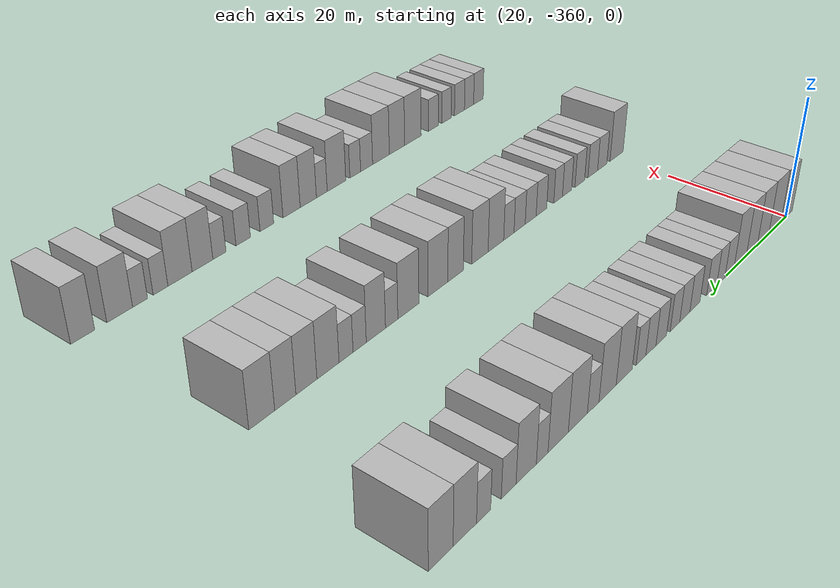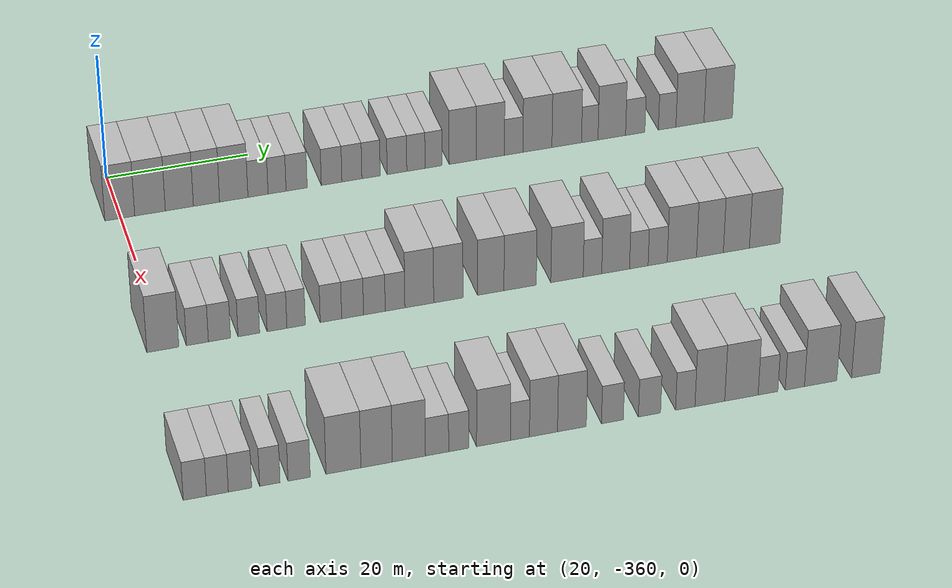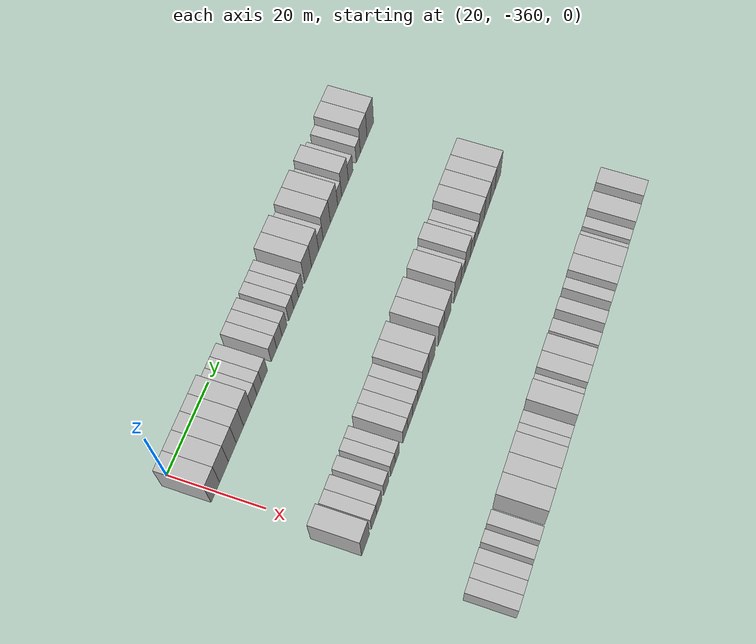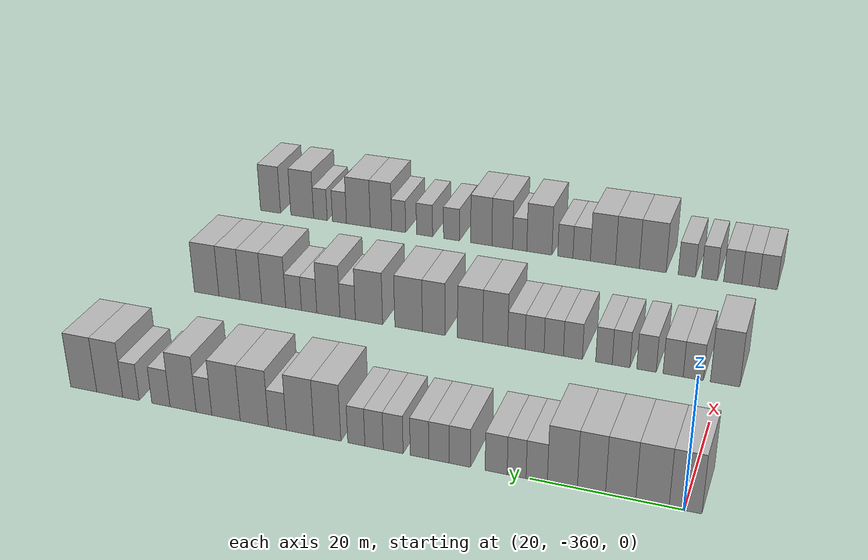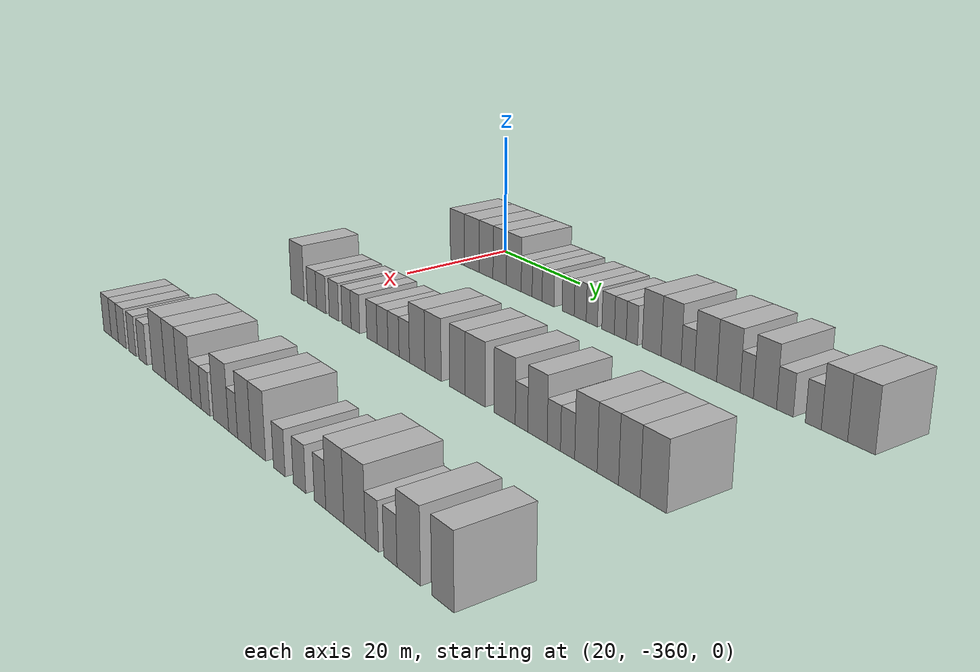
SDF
<sdf version="1.6">
 <world name="default">
  <model name="building_25">
   <static>1</static>
   <pose>25.0000 -360.1226 0 0.000000 0.000000 0.000000</pose>
   <link name="link">
    <pose>0 0 4.50 0 0 0</pose>
    <collision name="collision"><geometry><box><size>10.0000 4.1233 9.0000</size></box></geometry></collision>
    <visual name="visual">
     <cast_shadows>0</cast_shadows>
     <geometry><box><size>10.0000 4.1233 9.0000</size></box></geometry>
     <material>
      <script>
       <uri>model://HANNAS_wall/materials/scripts</uri>
       <uri>model://HANNAS_wall/materials/textures</uri>
       <name>vrc/HANNAS_wall</name>
      </script>
     </material>
    </visual>
   </link>
  </model>
  <model name="building_26">
   <static>1</static>
   <pose>25.0000 -355.9413 0 0.000000 0.000000 0.000000</pose>
   <link name="link">
    <pose>0 0 4.50 0 0 0</pose>
    <collision name="collision"><geometry><box><size>10.0000 4.2394 9.0000</size></box></geometry></collision>
    <visual name="visual">
     <cast_shadows>0</cast_shadows>
     <geometry><box><size>10.0000 4.2394 9.0000</size></box></geometry>
     <material>
      <script>
       <uri>model://HANNAS_wall/materials/scripts</uri>
       <uri>model://HANNAS_wall/materials/textures</uri>
       <name>vrc/HANNAS_wall</name>
      </script>
     </material>
    </visual>
   </link>
  </model>
  <model name="building_27">
   <static>1</static>
   <pose>25.0000 -351.8706 0 0.000000 0.000000 0.000000</pose>
   <link name="link">
    <pose>0 0 4.50 0 0 0</pose>
    <collision name="collision"><geometry><box><size>10.0000 3.9019 9.0000</size></box></geometry></collision>
    <visual name="visual">
     <cast_shadows>0</cast_shadows>
     <geometry><box><size>10.0000 3.9019 9.0000</size></box></geometry>
     <material>
      <script>
       <uri>model://HANNAS_wall/materials/scripts</uri>
       <uri>model://HANNAS_wall/materials/textures</uri>
       <name>vrc/HANNAS_wall</name>
      </script>
     </material>
    </visual>
   </link>
  </model>
  <model name="building_28">
   <static>1</static>
   <pose>25.0000 -348.0897 0 0.000000 0.000000 0.000000</pose>
   <link name="link">
    <pose>0 0 4.50 0 0 0</pose>
    <collision name="collision"><geometry><box><size>10.0000 3.6598 9.0000</size></box></geometry></collision>
    <visual name="visual">
     <cast_shadows>0</cast_shadows>
     <geometry><box><size>10.0000 3.6598 9.0000</size></box></geometry>
     <material>
      <script>
       <uri>model://HANNAS_wall/materials/scripts</uri>
       <uri>model://HANNAS_wall/materials/textures</uri>
       <name>vrc/HANNAS_wall</name>
      </script>
     </material>
    </visual>
   </link>
  </model>
  <model name="building_29">
   <static>1</static>
   <pose>25.0000 -344.2783 0 0.000000 0.000000 0.000000</pose>
   <link name="link">
    <pose>0 0 4.50 0 0 0</pose>
    <collision name="collision"><geometry><box><size>10.0000 3.9630 9.0000</size></box></geometry></collision>
    <visual name="visual">
     <cast_shadows>0</cast_shadows>
     <geometry><box><size>10.0000 3.9630 9.0000</size></box></geometry>
     <material>
      <script>
       <uri>model://HANNAS_wall/materials/scripts</uri>
       <uri>model://HANNAS_wall/materials/textures</uri>
       <name>vrc/HANNAS_wall</name>
      </script>
     </material>
    </visual>
   </link>
  </model>
  <model name="building_30">
   <static>1</static>
   <pose>25.0000 -340.8837 0 0.000000 0.000000 0.000000</pose>
   <link name="link">
    <pose>0 0 3.00 0 0 0</pose>
    <collision name="collision"><geometry><box><size>10.0000 2.8261 6.0000</size></box></geometry></collision>
    <visual name="visual">
     <cast_shadows>0</cast_shadows>
     <geometry><box><size>10.0000 2.8261 6.0000</size></box></geometry>
     <material>
      <script>
       <uri>model://HANNAS_wall/materials/scripts</uri>
       <uri>model://HANNAS_wall/materials/textures</uri>
       <name>vrc/HANNAS_wall</name>
      </script>
     </material>
    </visual>
   </link>
  </model>
  <model name="building_31">
   <static>1</static>
   <pose>25.0000 -338.2018 0 0.000000 0.000000 0.000000</pose>
   <link name="link">
    <pose>0 0 3.00 0 0 0</pose>
    <collision name="collision"><geometry><box><size>10.0000 2.5377 6.0000</size></box></geometry></collision>
    <visual name="visual">
     <cast_shadows>0</cast_shadows>
     <geometry><box><size>10.0000 2.5377 6.0000</size></box></geometry>
     <material>
      <script>
       <uri>model://HANNAS_wall/materials/scripts</uri>
       <uri>model://HANNAS_wall/materials/textures</uri>
       <name>vrc/HANNAS_wall</name>
      </script>
     </material>
    </visual>
   </link>
  </model>
  <model name="building_32">
   <static>1</static>
   <pose>25.0000 -335.4425 0 0.000000 0.000000 0.000000</pose>
   <link name="link">
    <pose>0 0 3.00 0 0 0</pose>
    <collision name="collision"><geometry><box><size>10.0000 2.9809 6.0000</size></box></geometry></collision>
    <visual name="visual">
     <cast_shadows>0</cast_shadows>
     <geometry><box><size>10.0000 2.9809 6.0000</size></box></geometry>
     <material>
      <script>
       <uri>model://HANNAS_wall/materials/scripts</uri>
       <uri>model://HANNAS_wall/materials/textures</uri>
       <name>vrc/HANNAS_wall</name>
      </script>
     </material>
    </visual>
   </link>
  </model>
  <model name="building_33">
   <static>1</static>
   <pose>25.0000 -330.4921 0 0.000000 0.000000 0.000000</pose>
   <link name="link">
    <pose>0 0 3.00 0 0 0</pose>
    <collision name="collision"><geometry><box><size>10.0000 2.9199 6.0000</size></box></geometry></collision>
    <visual name="visual">
     <cast_shadows>0</cast_shadows>
     <geometry><box><size>10.0000 2.9199 6.0000</size></box></geometry>
     <material>
      <script>
       <uri>model://HANNAS_wall/materials/scripts</uri>
       <uri>model://HANNAS_wall/materials/textures</uri>
       <name>vrc/HANNAS_wall</name>
      </script>
     </material>
    </visual>
   </link>
  </model>
  <model name="building_34">
   <static>1</static>
   <pose>25.0000 -327.6119 0 0.000000 0.000000 0.000000</pose>
   <link name="link">
    <pose>0 0 3.00 0 0 0</pose>
    <collision name="collision"><geometry><box><size>10.0000 2.8404 6.0000</size></box></geometry></collision>
    <visual name="visual">
     <cast_shadows>0</cast_shadows>
     <geometry><box><size>10.0000 2.8404 6.0000</size></box></geometry>
     <material>
      <script>
       <uri>model://HANNAS_wall/materials/scripts</uri>
       <uri>model://HANNAS_wall/materials/textures</uri>
       <name>vrc/HANNAS_wall</name>
      </script>
     </material>
    </visual>
   </link>
  </model>
  <model name="building_35">
   <static>1</static>
   <pose>25.0000 -324.8890 0 0.000000 0.000000 0.000000</pose>
   <link name="link">
    <pose>0 0 3.00 0 0 0</pose>
    <collision name="collision"><geometry><box><size>10.0000 2.6055 6.0000</size></box></geometry></collision>
    <visual name="visual">
     <cast_shadows>0</cast_shadows>
     <geometry><box><size>10.0000 2.6055 6.0000</size></box></geometry>
     <material>
      <script>
       <uri>model://HANNAS_wall/materials/scripts</uri>
       <uri>model://HANNAS_wall/materials/textures</uri>
       <name>vrc/HANNAS_wall</name>
      </script>
     </material>
    </visual>
   </link>
  </model>
  <model name="building_36">
   <static>1</static>
   <pose>25.0000 -321.1808 0 0.000000 0.000000 0.000000</pose>
   <link name="link">
    <pose>0 0 3.00 0 0 0</pose>
    <collision name="collision"><geometry><box><size>10.0000 2.8110 6.0000</size></box></geometry></collision>
    <visual name="visual">
     <cast_shadows>0</cast_shadows>
     <geometry><box><size>10.0000 2.8110 6.0000</size></box></geometry>
     <material>
      <script>
       <uri>model://HANNAS_wall/materials/scripts</uri>
       <uri>model://HANNAS_wall/materials/textures</uri>
       <name>vrc/HANNAS_wall</name>
      </script>
     </material>
    </visual>
   </link>
  </model>
  <model name="building_37">
   <static>1</static>
   <pose>25.0000 -318.4641 0 0.000000 0.000000 0.000000</pose>
   <link name="link">
    <pose>0 0 3.00 0 0 0</pose>
    <collision name="collision"><geometry><box><size>10.0000 2.6223 6.0000</size></box></geometry></collision>
    <visual name="visual">
     <cast_shadows>0</cast_shadows>
     <geometry><box><size>10.0000 2.6223 6.0000</size></box></geometry>
     <material>
      <script>
       <uri>model://HANNAS_wall/materials/scripts</uri>
       <uri>model://HANNAS_wall/materials/textures</uri>
       <name>vrc/HANNAS_wall</name>
      </script>
     </material>
    </visual>
   </link>
  </model>
  <model name="building_38">
   <static>1</static>
   <pose>25.0000 -315.9210 0 0.000000 0.000000 0.000000</pose>
   <link name="link">
    <pose>0 0 3.00 0 0 0</pose>
    <collision name="collision"><geometry><box><size>10.0000 2.4640 6.0000</size></box></geometry></collision>
    <visual name="visual">
     <cast_shadows>0</cast_shadows>
     <geometry><box><size>10.0000 2.4640 6.0000</size></box></geometry>
     <material>
      <script>
       <uri>model://HANNAS_wall/materials/scripts</uri>
       <uri>model://HANNAS_wall/materials/textures</uri>
       <name>vrc/HANNAS_wall</name>
      </script>
     </material>
    </visual>
   </link>
  </model>
  <model name="building_39">
   <static>1</static>
   <pose>25.0000 -311.7284 0 0.000000 0.000000 0.000000</pose>
   <link name="link">
    <pose>0 0 4.50 0 0 0</pose>
    <collision name="collision"><geometry><box><size>10.0000 3.9211 9.0000</size></box></geometry></collision>
    <visual name="visual">
     <cast_shadows>0</cast_shadows>
     <geometry><box><size>10.0000 3.9211 9.0000</size></box></geometry>
     <material>
      <script>
       <uri>model://HANNAS_wall/materials/scripts</uri>
       <uri>model://HANNAS_wall/materials/textures</uri>
       <name>vrc/HANNAS_wall</name>
      </script>
     </material>
    </visual>
   </link>
  </model>
  <model name="building_40">
   <static>1</static>
   <pose>25.0000 -307.7349 0 0.000000 0.000000 0.000000</pose>
   <link name="link">
    <pose>0 0 4.50 0 0 0</pose>
    <collision name="collision"><geometry><box><size>10.0000 4.0659 9.0000</size></box></geometry></collision>
    <visual name="visual">
     <cast_shadows>0</cast_shadows>
     <geometry><box><size>10.0000 4.0659 9.0000</size></box></geometry>
     <material>
      <script>
       <uri>model://HANNAS_wall/materials/scripts</uri>
       <uri>model://HANNAS_wall/materials/textures</uri>
       <name>vrc/HANNAS_wall</name>
      </script>
     </material>
    </visual>
   </link>
  </model>
  <model name="building_41">
   <static>1</static>
   <pose>25.0000 -304.3596 0 0.000000 0.000000 0.000000</pose>
   <link name="link">
    <pose>0 0 3.00 0 0 0</pose>
    <collision name="collision"><geometry><box><size>10.0000 2.6848 6.0000</size></box></geometry></collision>
    <visual name="visual">
     <cast_shadows>0</cast_shadows>
     <geometry><box><size>10.0000 2.6848 6.0000</size></box></geometry>
     <material>
      <script>
       <uri>model://HANNAS_wall/materials/scripts</uri>
       <uri>model://HANNAS_wall/materials/textures</uri>
       <name>vrc/HANNAS_wall</name>
      </script>
     </material>
    </visual>
   </link>
  </model>
  <model name="building_42">
   <static>1</static>
   <pose>25.0000 -300.9014 0 0.000000 0.000000 0.000000</pose>
   <link name="link">
    <pose>0 0 4.50 0 0 0</pose>
    <collision name="collision"><geometry><box><size>10.0000 4.2315 9.0000</size></box></geometry></collision>
    <visual name="visual">
     <cast_shadows>0</cast_shadows>
     <geometry><box><size>10.0000 4.2315 9.0000</size></box></geometry>
     <material>
      <script>
       <uri>model://HANNAS_wall/materials/scripts</uri>
       <uri>model://HANNAS_wall/materials/textures</uri>
       <name>vrc/HANNAS_wall</name>
      </script>
     </material>
    </visual>
   </link>
  </model>
  <model name="building_43">
   <static>1</static>
   <pose>25.0000 -296.6218 0 0.000000 0.000000 0.000000</pose>
   <link name="link">
    <pose>0 0 4.50 0 0 0</pose>
    <collision name="collision"><geometry><box><size>10.0000 4.3277 9.0000</size></box></geometry></collision>
    <visual name="visual">
     <cast_shadows>0</cast_shadows>
     <geometry><box><size>10.0000 4.3277 9.0000</size></box></geometry>
     <material>
      <script>
       <uri>model://HANNAS_wall/materials/scripts</uri>
       <uri>model://HANNAS_wall/materials/textures</uri>
       <name>vrc/HANNAS_wall</name>
      </script>
     </material>
    </visual>
   </link>
  </model>
  <model name="building_44">
   <static>1</static>
   <pose>25.0000 -293.2491 0 0.000000 0.000000 0.000000</pose>
   <link name="link">
    <pose>0 0 3.00 0 0 0</pose>
    <collision name="collision"><geometry><box><size>10.0000 2.4176 6.0000</size></box></geometry></collision>
    <visual name="visual">
     <cast_shadows>0</cast_shadows>
     <geometry><box><size>10.0000 2.4176 6.0000</size></box></geometry>
     <material>
      <script>
       <uri>model://HANNAS_wall/materials/scripts</uri>
       <uri>model://HANNAS_wall/materials/textures</uri>
       <name>vrc/HANNAS_wall</name>
      </script>
     </material>
    </visual>
   </link>
  </model>
  <model name="building_45">
   <static>1</static>
   <pose>25.0000 -290.0112 0 0.000000 0.000000 0.000000</pose>
   <link name="link">
    <pose>0 0 4.50 0 0 0</pose>
    <collision name="collision"><geometry><box><size>10.0000 4.0582 9.0000</size></box></geometry></collision>
    <visual name="visual">
     <cast_shadows>0</cast_shadows>
     <geometry><box><size>10.0000 4.0582 9.0000</size></box></geometry>
     <material>
      <script>
       <uri>model://HANNAS_wall/materials/scripts</uri>
       <uri>model://HANNAS_wall/materials/textures</uri>
       <name>vrc/HANNAS_wall</name>
      </script>
     </material>
    </visual>
   </link>
  </model>
  <model name="building_46">
   <static>1</static>
   <pose>25.0000 -286.5577 0 0.000000 0.000000 0.000000</pose>
   <link name="link">
    <pose>0 0 3.00 0 0 0</pose>
    <collision name="collision"><geometry><box><size>10.0000 2.8488 6.0000</size></box></geometry></collision>
    <visual name="visual">
     <cast_shadows>0</cast_shadows>
     <geometry><box><size>10.0000 2.8488 6.0000</size></box></geometry>
     <material>
      <script>
       <uri>model://HANNAS_wall/materials/scripts</uri>
       <uri>model://HANNAS_wall/materials/textures</uri>
       <name>vrc/HANNAS_wall</name>
      </script>
     </material>
    </visual>
   </link>
  </model>
  <model name="building_47">
   <static>1</static>
   <pose>25.0000 -281.8318 0 0.000000 0.000000 0.000000</pose>
   <link name="link">
    <pose>0 0 3.00 0 0 0</pose>
    <collision name="collision"><geometry><box><size>10.0000 2.6030 6.0000</size></box></geometry></collision>
    <visual name="visual">
     <cast_shadows>0</cast_shadows>
     <geometry><box><size>10.0000 2.6030 6.0000</size></box></geometry>
     <material>
      <script>
       <uri>model://HANNAS_wall/materials/scripts</uri>
       <uri>model://HANNAS_wall/materials/textures</uri>
       <name>vrc/HANNAS_wall</name>
      </script>
     </material>
    </visual>
   </link>
  </model>
  <model name="building_48">
   <static>1</static>
   <pose>25.0000 -278.4453 0 0.000000 0.000000 0.000000</pose>
   <link name="link">
    <pose>0 0 4.50 0 0 0</pose>
    <collision name="collision"><geometry><box><size>10.0000 4.1701 9.0000</size></box></geometry></collision>
    <visual name="visual">
     <cast_shadows>0</cast_shadows>
     <geometry><box><size>10.0000 4.1701 9.0000</size></box></geometry>
     <material>
      <script>
       <uri>model://HANNAS_wall/materials/scripts</uri>
       <uri>model://HANNAS_wall/materials/textures</uri>
       <name>vrc/HANNAS_wall</name>
      </script>
     </material>
    </visual>
   </link>
  </model>
  <model name="building_49">
   <static>1</static>
   <pose>25.0000 -274.2429 0 0.000000 0.000000 0.000000</pose>
   <link name="link">
    <pose>0 0 4.50 0 0 0</pose>
    <collision name="collision"><geometry><box><size>10.0000 4.2348 9.0000</size></box></geometry></collision>
    <visual name="visual">
     <cast_shadows>0</cast_shadows>
     <geometry><box><size>10.0000 4.2348 9.0000</size></box></geometry>
     <material>
      <script>
       <uri>model://HANNAS_wall/materials/scripts</uri>
       <uri>model://HANNAS_wall/materials/textures</uri>
       <name>vrc/HANNAS_wall</name>
      </script>
     </material>
    </visual>
   </link>
  </model>
  <model name="building_241">
   <static>1</static>
   <pose>55.0000 -360.5211 0 0.000000 0.000000 0.000000</pose>
   <link name="link">
    <pose>0 0 4.50 0 0 0</pose>
    <collision name="collision"><geometry><box><size>10.0000 4.2093 9.0000</size></box></geometry></collision>
    <visual name="visual">
     <cast_shadows>0</cast_shadows>
     <geometry><box><size>10.0000 4.2093 9.0000</size></box></geometry>
     <material>
      <script>
       <uri>model://HANNAS_wall/materials/scripts</uri>
       <uri>model://HANNAS_wall/materials/textures</uri>
       <name>vrc/HANNAS_wall</name>
      </script>
     </material>
    </visual>
   </link>
  </model>
  <model name="building_242">
   <static>1</static>
   <pose>55.0000 -355.9634 0 0.000000 0.000000 0.000000</pose>
   <link name="link">
    <pose>0 0 3.00 0 0 0</pose>
    <collision name="collision"><geometry><box><size>10.0000 2.9061 6.0000</size></box></geometry></collision>
    <visual name="visual">
     <cast_shadows>0</cast_shadows>
     <geometry><box><size>10.0000 2.9061 6.0000</size></box></geometry>
     <material>
      <script>
       <uri>model://HANNAS_wall/materials/scripts</uri>
       <uri>model://HANNAS_wall/materials/textures</uri>
       <name>vrc/HANNAS_wall</name>
      </script>
     </material>
    </visual>
   </link>
  </model>
  <model name="building_243">
   <static>1</static>
   <pose>55.0000 -353.0442 0 0.000000 0.000000 0.000000</pose>
   <link name="link">
    <pose>0 0 3.00 0 0 0</pose>
    <collision name="collision"><geometry><box><size>10.0000 2.9323 6.0000</size></box></geometry></collision>
    <visual name="visual">
     <cast_shadows>0</cast_shadows>
     <geometry><box><size>10.0000 2.9323 6.0000</size></box></geometry>
     <material>
      <script>
       <uri>model://HANNAS_wall/materials/scripts</uri>
       <uri>model://HANNAS_wall/materials/textures</uri>
       <name>vrc/HANNAS_wall</name>
      </script>
     </material>
    </visual>
   </link>
  </model>
  <model name="building_244">
   <static>1</static>
   <pose>55.0000 -349.1440 0 0.000000 0.000000 0.000000</pose>
   <link name="link">
    <pose>0 0 3.00 0 0 0</pose>
    <collision name="collision"><geometry><box><size>10.0000 2.8681 6.0000</size></box></geometry></collision>
    <visual name="visual">
     <cast_shadows>0</cast_shadows>
     <geometry><box><size>10.0000 2.8681 6.0000</size></box></geometry>
     <material>
      <script>
       <uri>model://HANNAS_wall/materials/scripts</uri>
       <uri>model://HANNAS_wall/materials/textures</uri>
       <name>vrc/HANNAS_wall</name>
      </script>
     </material>
    </visual>
   </link>
  </model>
  <model name="building_245">
   <static>1</static>
   <pose>55.0000 -345.3884 0 0.000000 0.000000 0.000000</pose>
   <link name="link">
    <pose>0 0 3.00 0 0 0</pose>
    <collision name="collision"><geometry><box><size>10.0000 2.6430 6.0000</size></box></geometry></collision>
    <visual name="visual">
     <cast_shadows>0</cast_shadows>
     <geometry><box><size>10.0000 2.6430 6.0000</size></box></geometry>
     <material>
      <script>
       <uri>model://HANNAS_wall/materials/scripts</uri>
       <uri>model://HANNAS_wall/materials/textures</uri>
       <name>vrc/HANNAS_wall</name>
      </script>
     </material>
    </visual>
   </link>
  </model>
  <model name="building_246">
   <static>1</static>
   <pose>55.0000 -342.8329 0 0.000000 0.000000 0.000000</pose>
   <link name="link">
    <pose>0 0 3.00 0 0 0</pose>
    <collision name="collision"><geometry><box><size>10.0000 2.4680 6.0000</size></box></geometry></collision>
    <visual name="visual">
     <cast_shadows>0</cast_shadows>
     <geometry><box><size>10.0000 2.4680 6.0000</size></box></geometry>
     <material>
      <script>
       <uri>model://HANNAS_wall/materials/scripts</uri>
       <uri>model://HANNAS_wall/materials/textures</uri>
       <name>vrc/HANNAS_wall</name>
      </script>
     </material>
    </visual>
   </link>
  </model>
  <model name="building_247">
   <static>1</static>
   <pose>55.0000 -338.1596 0 0.000000 0.000000 0.000000</pose>
   <link name="link">
    <pose>0 0 3.00 0 0 0</pose>
    <collision name="collision"><geometry><box><size>10.0000 2.8785 6.0000</size></box></geometry></collision>
    <visual name="visual">
     <cast_shadows>0</cast_shadows>
     <geometry><box><size>10.0000 2.8785 6.0000</size></box></geometry>
     <material>
      <script>
       <uri>model://HANNAS_wall/materials/scripts</uri>
       <uri>model://HANNAS_wall/materials/textures</uri>
       <name>vrc/HANNAS_wall</name>
      </script>
     </material>
    </visual>
   </link>
  </model>
  <model name="building_248">
   <static>1</static>
   <pose>55.0000 -335.2440 0 0.000000 0.000000 0.000000</pose>
   <link name="link">
    <pose>0 0 3.00 0 0 0</pose>
    <collision name="collision"><geometry><box><size>10.0000 2.9527 6.0000</size></box></geometry></collision>
    <visual name="visual">
     <cast_shadows>0</cast_shadows>
     <geometry><box><size>10.0000 2.9527 6.0000</size></box></geometry>
     <material>
      <script>
       <uri>model://HANNAS_wall/materials/scripts</uri>
       <uri>model://HANNAS_wall/materials/textures</uri>
       <name>vrc/HANNAS_wall</name>
      </script>
     </material>
    </visual>
   </link>
  </model>
  <model name="building_249">
   <static>1</static>
   <pose>55.0000 -332.3007 0 0.000000 0.000000 0.000000</pose>
   <link name="link">
    <pose>0 0 3.00 0 0 0</pose>
    <collision name="collision"><geometry><box><size>10.0000 2.9338 6.0000</size></box></geometry></collision>
    <visual name="visual">
     <cast_shadows>0</cast_shadows>
     <geometry><box><size>10.0000 2.9338 6.0000</size></box></geometry>
     <material>
      <script>
       <uri>model://HANNAS_wall/materials/scripts</uri>
       <uri>model://HANNAS_wall/materials/textures</uri>
       <name>vrc/HANNAS_wall</name>
      </script>
     </material>
    </visual>
   </link>
  </model>
  <model name="building_250">
   <static>1</static>
   <pose>55.0000 -329.4993 0 0.000000 0.000000 0.000000</pose>
   <link name="link">
    <pose>0 0 3.00 0 0 0</pose>
    <collision name="collision"><geometry><box><size>10.0000 2.6689 6.0000</size></box></geometry></collision>
    <visual name="visual">
     <cast_shadows>0</cast_shadows>
     <geometry><box><size>10.0000 2.6689 6.0000</size></box></geometry>
     <material>
      <script>
       <uri>model://HANNAS_wall/materials/scripts</uri>
       <uri>model://HANNAS_wall/materials/textures</uri>
       <name>vrc/HANNAS_wall</name>
      </script>
     </material>
    </visual>
   </link>
  </model>
  <model name="building_251">
   <static>1</static>
   <pose>55.0000 -326.2075 0 0.000000 0.000000 0.000000</pose>
   <link name="link">
    <pose>0 0 4.50 0 0 0</pose>
    <collision name="collision"><geometry><box><size>10.0000 3.9148 9.0000</size></box></geometry></collision>
    <visual name="visual">
     <cast_shadows>0</cast_shadows>
     <geometry><box><size>10.0000 3.9148 9.0000</size></box></geometry>
     <material>
      <script>
       <uri>model://HANNAS_wall/materials/scripts</uri>
       <uri>model://HANNAS_wall/materials/textures</uri>
       <name>vrc/HANNAS_wall</name>
      </script>
     </material>
    </visual>
   </link>
  </model>
  <model name="building_252">
   <static>1</static>
   <pose>55.0000 -322.2519 0 0.000000 0.000000 0.000000</pose>
   <link name="link">
    <pose>0 0 4.50 0 0 0</pose>
    <collision name="collision"><geometry><box><size>10.0000 3.9963 9.0000</size></box></geometry></collision>
    <visual name="visual">
     <cast_shadows>0</cast_shadows>
     <geometry><box><size>10.0000 3.9963 9.0000</size></box></geometry>
     <material>
      <script>
       <uri>model://HANNAS_wall/materials/scripts</uri>
       <uri>model://HANNAS_wall/materials/textures</uri>
       <name>vrc/HANNAS_wall</name>
      </script>
     </material>
    </visual>
   </link>
  </model>
  <model name="building_253">
   <static>1</static>
   <pose>55.0000 -316.4418 0 0.000000 0.000000 0.000000</pose>
   <link name="link">
    <pose>0 0 4.50 0 0 0</pose>
    <collision name="collision"><geometry><box><size>10.0000 3.6237 9.0000</size></box></geometry></collision>
    <visual name="visual">
     <cast_shadows>0</cast_shadows>
     <geometry><box><size>10.0000 3.6237 9.0000</size></box></geometry>
     <material>
      <script>
       <uri>model://HANNAS_wall/materials/scripts</uri>
       <uri>model://HANNAS_wall/materials/textures</uri>
       <name>vrc/HANNAS_wall</name>
      </script>
     </material>
    </visual>
   </link>
  </model>
  <model name="building_254">
   <static>1</static>
   <pose>55.0000 -312.3961 0 0.000000 0.000000 0.000000</pose>
   <link name="link">
    <pose>0 0 4.50 0 0 0</pose>
    <collision name="collision"><geometry><box><size>10.0000 4.4678 9.0000</size></box></geometry></collision>
    <visual name="visual">
     <cast_shadows>0</cast_shadows>
     <geometry><box><size>10.0000 4.4678 9.0000</size></box></geometry>
     <material>
      <script>
       <uri>model://HANNAS_wall/materials/scripts</uri>
       <uri>model://HANNAS_wall/materials/textures</uri>
       <name>vrc/HANNAS_wall</name>
      </script>
     </material>
    </visual>
   </link>
  </model>
  <model name="building_255">
   <static>1</static>
   <pose>55.0000 -305.9150 0 0.000000 0.000000 0.000000</pose>
   <link name="link">
    <pose>0 0 4.50 0 0 0</pose>
    <collision name="collision"><geometry><box><size>10.0000 4.4944 9.0000</size></box></geometry></collision>
    <visual name="visual">
     <cast_shadows>0</cast_shadows>
     <geometry><box><size>10.0000 4.4944 9.0000</size></box></geometry>
     <material>
      <script>
       <uri>model://HANNAS_wall/materials/scripts</uri>
       <uri>model://HANNAS_wall/materials/textures</uri>
       <name>vrc/HANNAS_wall</name>
      </script>
     </material>
    </visual>
   </link>
  </model>
  <model name="building_256">
   <static>1</static>
   <pose>55.0000 -302.3798 0 0.000000 0.000000 0.000000</pose>
   <link name="link">
    <pose>0 0 3.00 0 0 0</pose>
    <collision name="collision"><geometry><box><size>10.0000 2.5759 6.0000</size></box></geometry></collision>
    <visual name="visual">
     <cast_shadows>0</cast_shadows>
     <geometry><box><size>10.0000 2.5759 6.0000</size></box></geometry>
     <material>
      <script>
       <uri>model://HANNAS_wall/materials/scripts</uri>
       <uri>model://HANNAS_wall/materials/textures</uri>
       <name>vrc/HANNAS_wall</name>
      </script>
     </material>
    </visual>
   </link>
  </model>
  <model name="building_257">
   <static>1</static>
   <pose>55.0000 -299.1488 0 0.000000 0.000000 0.000000</pose>
   <link name="link">
    <pose>0 0 4.50 0 0 0</pose>
    <collision name="collision"><geometry><box><size>10.0000 3.8861 9.0000</size></box></geometry></collision>
    <visual name="visual">
     <cast_shadows>0</cast_shadows>
     <geometry><box><size>10.0000 3.8861 9.0000</size></box></geometry>
     <material>
      <script>
       <uri>model://HANNAS_wall/materials/scripts</uri>
       <uri>model://HANNAS_wall/materials/textures</uri>
       <name>vrc/HANNAS_wall</name>
      </script>
     </material>
    </visual>
   </link>
  </model>
  <model name="building_258">
   <static>1</static>
   <pose>55.0000 -295.9045 0 0.000000 0.000000 0.000000</pose>
   <link name="link">
    <pose>0 0 3.00 0 0 0</pose>
    <collision name="collision"><geometry><box><size>10.0000 2.6025 6.0000</size></box></geometry></collision>
    <visual name="visual">
     <cast_shadows>0</cast_shadows>
     <geometry><box><size>10.0000 2.6025 6.0000</size></box></geometry>
     <material>
      <script>
       <uri>model://HANNAS_wall/materials/scripts</uri>
       <uri>model://HANNAS_wall/materials/textures</uri>
       <name>vrc/HANNAS_wall</name>
      </script>
     </material>
    </visual>
   </link>
  </model>
  <model name="building_259">
   <static>1</static>
   <pose>55.0000 -293.2582 0 0.000000 0.000000 0.000000</pose>
   <link name="link">
    <pose>0 0 3.00 0 0 0</pose>
    <collision name="collision"><geometry><box><size>10.0000 2.6901 6.0000</size></box></geometry></collision>
    <visual name="visual">
     <cast_shadows>0</cast_shadows>
     <geometry><box><size>10.0000 2.6901 6.0000</size></box></geometry>
     <material>
      <script>
       <uri>model://HANNAS_wall/materials/scripts</uri>
       <uri>model://HANNAS_wall/materials/textures</uri>
       <name>vrc/HANNAS_wall</name>
      </script>
     </material>
    </visual>
   </link>
  </model>
  <model name="building_260">
   <static>1</static>
   <pose>55.0000 -289.8492 0 0.000000 0.000000 0.000000</pose>
   <link name="link">
    <pose>0 0 4.50 0 0 0</pose>
    <collision name="collision"><geometry><box><size>10.0000 4.1280 9.0000</size></box></geometry></collision>
    <visual name="visual">
     <cast_shadows>0</cast_shadows>
     <geometry><box><size>10.0000 4.1280 9.0000</size></box></geometry>
     <material>
      <script>
       <uri>model://HANNAS_wall/materials/scripts</uri>
       <uri>model://HANNAS_wall/materials/textures</uri>
       <name>vrc/HANNAS_wall</name>
      </script>
     </material>
    </visual>
   </link>
  </model>
  <model name="building_261">
   <static>1</static>
   <pose>55.0000 -285.8900 0 0.000000 0.000000 0.000000</pose>
   <link name="link">
    <pose>0 0 4.50 0 0 0</pose>
    <collision name="collision"><geometry><box><size>10.0000 3.7906 9.0000</size></box></geometry></collision>
    <visual name="visual">
     <cast_shadows>0</cast_shadows>
     <geometry><box><size>10.0000 3.7906 9.0000</size></box></geometry>
     <material>
      <script>
       <uri>model://HANNAS_wall/materials/scripts</uri>
       <uri>model://HANNAS_wall/materials/textures</uri>
       <name>vrc/HANNAS_wall</name>
      </script>
     </material>
    </visual>
   </link>
  </model>
  <model name="building_262">
   <static>1</static>
   <pose>55.0000 -282.1480 0 0.000000 0.000000 0.000000</pose>
   <link name="link">
    <pose>0 0 4.50 0 0 0</pose>
    <collision name="collision"><geometry><box><size>10.0000 3.6932 9.0000</size></box></geometry></collision>
    <visual name="visual">
     <cast_shadows>0</cast_shadows>
     <geometry><box><size>10.0000 3.6932 9.0000</size></box></geometry>
     <material>
      <script>
       <uri>model://HANNAS_wall/materials/scripts</uri>
       <uri>model://HANNAS_wall/materials/textures</uri>
       <name>vrc/HANNAS_wall</name>
      </script>
     </material>
    </visual>
   </link>
  </model>
  <model name="building_263">
   <static>1</static>
   <pose>55.0000 -278.1277 0 0.000000 0.000000 0.000000</pose>
   <link name="link">
    <pose>0 0 4.50 0 0 0</pose>
    <collision name="collision"><geometry><box><size>10.0000 4.3475 9.0000</size></box></geometry></collision>
    <visual name="visual">
     <cast_shadows>0</cast_shadows>
     <geometry><box><size>10.0000 4.3475 9.0000</size></box></geometry>
     <material>
      <script>
       <uri>model://HANNAS_wall/materials/scripts</uri>
       <uri>model://HANNAS_wall/materials/textures</uri>
       <name>vrc/HANNAS_wall</name>
      </script>
     </material>
    </visual>
   </link>
  </model>
  <model name="building_479">
   <static>1</static>
   <pose>85.0000 -362.8783 0 0.000000 0.000000 0.000000</pose>
   <link name="link">
    <pose>0 0 3.00 0 0 0</pose>
    <collision name="collision"><geometry><box><size>10.0000 2.9049 6.0000</size></box></geometry></collision>
    <visual name="visual">
     <cast_shadows>0</cast_shadows>
     <geometry><box><size>10.0000 2.9049 6.0000</size></box></geometry>
     <material>
      <script>
       <uri>model://HANNAS_wall/materials/scripts</uri>
       <uri>model://HANNAS_wall/materials/textures</uri>
       <name>vrc/HANNAS_wall</name>
      </script>
     </material>
    </visual>
   </link>
  </model>
  <model name="building_480">
   <static>1</static>
   <pose>85.0000 -360.0569 0 0.000000 0.000000 0.000000</pose>
   <link name="link">
    <pose>0 0 3.00 0 0 0</pose>
    <collision name="collision"><geometry><box><size>10.0000 2.7378 6.0000</size></box></geometry></collision>
    <visual name="visual">
     <cast_shadows>0</cast_shadows>
     <geometry><box><size>10.0000 2.7378 6.0000</size></box></geometry>
     <material>
      <script>
       <uri>model://HANNAS_wall/materials/scripts</uri>
       <uri>model://HANNAS_wall/materials/textures</uri>
       <name>vrc/HANNAS_wall</name>
      </script>
     </material>
    </visual>
   </link>
  </model>
  <model name="building_481">
   <static>1</static>
   <pose>85.0000 -357.2239 0 0.000000 0.000000 0.000000</pose>
   <link name="link">
    <pose>0 0 3.00 0 0 0</pose>
    <collision name="collision"><geometry><box><size>10.0000 2.9283 6.0000</size></box></geometry></collision>
    <visual name="visual">
     <cast_shadows>0</cast_shadows>
     <geometry><box><size>10.0000 2.9283 6.0000</size></box></geometry>
     <material>
      <script>
       <uri>model://HANNAS_wall/materials/scripts</uri>
       <uri>model://HANNAS_wall/materials/textures</uri>
       <name>vrc/HANNAS_wall</name>
      </script>
     </material>
    </visual>
   </link>
  </model>
  <model name="building_482">
   <static>1</static>
   <pose>85.0000 -353.4683 0 0.000000 0.000000 0.000000</pose>
   <link name="link">
    <pose>0 0 3.00 0 0 0</pose>
    <collision name="collision"><geometry><box><size>10.0000 2.5830 6.0000</size></box></geometry></collision>
    <visual name="visual">
     <cast_shadows>0</cast_shadows>
     <geometry><box><size>10.0000 2.5830 6.0000</size></box></geometry>
     <material>
      <script>
       <uri>model://HANNAS_wall/materials/scripts</uri>
       <uri>model://HANNAS_wall/materials/textures</uri>
       <name>vrc/HANNAS_wall</name>
      </script>
     </material>
    </visual>
   </link>
  </model>
  <model name="building_483">
   <static>1</static>
   <pose>85.0000 -349.7690 0 0.000000 0.000000 0.000000</pose>
   <link name="link">
    <pose>0 0 3.00 0 0 0</pose>
    <collision name="collision"><geometry><box><size>10.0000 2.8156 6.0000</size></box></geometry></collision>
    <visual name="visual">
     <cast_shadows>0</cast_shadows>
     <geometry><box><size>10.0000 2.8156 6.0000</size></box></geometry>
     <material>
      <script>
       <uri>model://HANNAS_wall/materials/scripts</uri>
       <uri>model://HANNAS_wall/materials/textures</uri>
       <name>vrc/HANNAS_wall</name>
      </script>
     </material>
    </visual>
   </link>
  </model>
  <model name="building_484">
   <static>1</static>
   <pose>85.0000 -344.1387 0 0.000000 0.000000 0.000000</pose>
   <link name="link">
    <pose>0 0 4.50 0 0 0</pose>
    <collision name="collision"><geometry><box><size>10.0000 4.4451 9.0000</size></box></geometry></collision>
    <visual name="visual">
     <cast_shadows>0</cast_shadows>
     <geometry><box><size>10.0000 4.4451 9.0000</size></box></geometry>
     <material>
      <script>
       <uri>model://HANNAS_wall/materials/scripts</uri>
       <uri>model://HANNAS_wall/materials/textures</uri>
       <name>vrc/HANNAS_wall</name>
      </script>
     </material>
    </visual>
   </link>
  </model>
  <model name="building_485">
   <static>1</static>
   <pose>85.0000 -339.9055 0 0.000000 0.000000 0.000000</pose>
   <link name="link">
    <pose>0 0 4.50 0 0 0</pose>
    <collision name="collision"><geometry><box><size>10.0000 4.0211 9.0000</size></box></geometry></collision>
    <visual name="visual">
     <cast_shadows>0</cast_shadows>
     <geometry><box><size>10.0000 4.0211 9.0000</size></box></geometry>
     <material>
      <script>
       <uri>model://HANNAS_wall/materials/scripts</uri>
       <uri>model://HANNAS_wall/materials/textures</uri>
       <name>vrc/HANNAS_wall</name>
      </script>
     </material>
    </visual>
   </link>
  </model>
  <model name="building_486">
   <static>1</static>
   <pose>85.0000 -335.7669 0 0.000000 0.000000 0.000000</pose>
   <link name="link">
    <pose>0 0 4.50 0 0 0</pose>
    <collision name="collision"><geometry><box><size>10.0000 4.2561 9.0000</size></box></geometry></collision>
    <visual name="visual">
     <cast_shadows>0</cast_shadows>
     <geometry><box><size>10.0000 4.2561 9.0000</size></box></geometry>
     <material>
      <script>
       <uri>model://HANNAS_wall/materials/scripts</uri>
       <uri>model://HANNAS_wall/materials/textures</uri>
       <name>vrc/HANNAS_wall</name>
      </script>
     </material>
    </visual>
   </link>
  </model>
  <model name="building_487">
   <static>1</static>
   <pose>85.0000 -332.1450 0 0.000000 0.000000 0.000000</pose>
   <link name="link">
    <pose>0 0 3.00 0 0 0</pose>
    <collision name="collision"><geometry><box><size>10.0000 2.9878 6.0000</size></box></geometry></collision>
    <visual name="visual">
     <cast_shadows>0</cast_shadows>
     <geometry><box><size>10.0000 2.9878 6.0000</size></box></geometry>
     <material>
      <script>
       <uri>model://HANNAS_wall/materials/scripts</uri>
       <uri>model://HANNAS_wall/materials/textures</uri>
       <name>vrc/HANNAS_wall</name>
      </script>
     </material>
    </visual>
   </link>
  </model>
  <model name="building_488">
   <static>1</static>
   <pose>85.0000 -329.3428 0 0.000000 0.000000 0.000000</pose>
   <link name="link">
    <pose>0 0 3.00 0 0 0</pose>
    <collision name="collision"><geometry><box><size>10.0000 2.6166 6.0000</size></box></geometry></collision>
    <visual name="visual">
     <cast_shadows>0</cast_shadows>
     <geometry><box><size>10.0000 2.6166 6.0000</size></box></geometry>
     <material>
      <script>
       <uri>model://HANNAS_wall/materials/scripts</uri>
       <uri>model://HANNAS_wall/materials/textures</uri>
       <name>vrc/HANNAS_wall</name>
      </script>
     </material>
    </visual>
   </link>
  </model>
  <model name="building_489">
   <static>1</static>
   <pose>85.0000 -324.8433 0 0.000000 0.000000 0.000000</pose>
   <link name="link">
    <pose>0 0 4.50 0 0 0</pose>
    <collision name="collision"><geometry><box><size>10.0000 4.3823 9.0000</size></box></geometry></collision>
    <visual name="visual">
     <cast_shadows>0</cast_shadows>
     <geometry><box><size>10.0000 4.3823 9.0000</size></box></geometry>
     <material>
      <script>
       <uri>model://HANNAS_wall/materials/scripts</uri>
       <uri>model://HANNAS_wall/materials/textures</uri>
       <name>vrc/HANNAS_wall</name>
      </script>
     </material>
    </visual>
   </link>
  </model>
  <model name="building_490">
   <static>1</static>
   <pose>85.0000 -321.4066 0 0.000000 0.000000 0.000000</pose>
   <link name="link">
    <pose>0 0 3.00 0 0 0</pose>
    <collision name="collision"><geometry><box><size>10.0000 2.4910 6.0000</size></box></geometry></collision>
    <visual name="visual">
     <cast_shadows>0</cast_shadows>
     <geometry><box><size>10.0000 2.4910 6.0000</size></box></geometry>
     <material>
      <script>
       <uri>model://HANNAS_wall/materials/scripts</uri>
       <uri>model://HANNAS_wall/materials/textures</uri>
       <name>vrc/HANNAS_wall</name>
      </script>
     </material>
    </visual>
   </link>
  </model>
  <model name="building_491">
   <static>1</static>
   <pose>85.0000 -318.3269 0 0.000000 0.000000 0.000000</pose>
   <link name="link">
    <pose>0 0 4.50 0 0 0</pose>
    <collision name="collision"><geometry><box><size>10.0000 3.6683 9.0000</size></box></geometry></collision>
    <visual name="visual">
     <cast_shadows>0</cast_shadows>
     <geometry><box><size>10.0000 3.6683 9.0000</size></box></geometry>
     <material>
      <script>
       <uri>model://HANNAS_wall/materials/scripts</uri>
       <uri>model://HANNAS_wall/materials/textures</uri>
       <name>vrc/HANNAS_wall</name>
      </script>
     </material>
    </visual>
   </link>
  </model>
  <model name="building_492">
   <static>1</static>
   <pose>85.0000 -314.6052 0 0.000000 0.000000 0.000000</pose>
   <link name="link">
    <pose>0 0 4.50 0 0 0</pose>
    <collision name="collision"><geometry><box><size>10.0000 3.7751 9.0000</size></box></geometry></collision>
    <visual name="visual">
     <cast_shadows>0</cast_shadows>
     <geometry><box><size>10.0000 3.7751 9.0000</size></box></geometry>
     <material>
      <script>
       <uri>model://HANNAS_wall/materials/scripts</uri>
       <uri>model://HANNAS_wall/materials/textures</uri>
       <name>vrc/HANNAS_wall</name>
      </script>
     </material>
    </visual>
   </link>
  </model>
  <model name="building_493">
   <static>1</static>
   <pose>85.0000 -309.2751 0 0.000000 0.000000 0.000000</pose>
   <link name="link">
    <pose>0 0 3.00 0 0 0</pose>
    <collision name="collision"><geometry><box><size>10.0000 2.8851 6.0000</size></box></geometry></collision>
    <visual name="visual">
     <cast_shadows>0</cast_shadows>
     <geometry><box><size>10.0000 2.8851 6.0000</size></box></geometry>
     <material>
      <script>
       <uri>model://HANNAS_wall/materials/scripts</uri>
       <uri>model://HANNAS_wall/materials/textures</uri>
       <name>vrc/HANNAS_wall</name>
      </script>
     </material>
    </visual>
   </link>
  </model>
  <model name="building_494">
   <static>1</static>
   <pose>85.0000 -304.3654 0 0.000000 0.000000 0.000000</pose>
   <link name="link">
    <pose>0 0 3.00 0 0 0</pose>
    <collision name="collision"><geometry><box><size>10.0000 2.9343 6.0000</size></box></geometry></collision>
    <visual name="visual">
     <cast_shadows>0</cast_shadows>
     <geometry><box><size>10.0000 2.9343 6.0000</size></box></geometry>
     <material>
      <script>
       <uri>model://HANNAS_wall/materials/scripts</uri>
       <uri>model://HANNAS_wall/materials/textures</uri>
       <name>vrc/HANNAS_wall</name>
      </script>
     </material>
    </visual>
   </link>
  </model>
  <model name="building_495">
   <static>1</static>
   <pose>85.0000 -299.6093 0 0.000000 0.000000 0.000000</pose>
   <link name="link">
    <pose>0 0 3.00 0 0 0</pose>
    <collision name="collision"><geometry><box><size>10.0000 2.5780 6.0000</size></box></geometry></collision>
    <visual name="visual">
     <cast_shadows>0</cast_shadows>
     <geometry><box><size>10.0000 2.5780 6.0000</size></box></geometry>
     <material>
      <script>
       <uri>model://HANNAS_wall/materials/scripts</uri>
       <uri>model://HANNAS_wall/materials/textures</uri>
       <name>vrc/HANNAS_wall</name>
      </script>
     </material>
    </visual>
   </link>
  </model>
  <model name="building_496">
   <static>1</static>
   <pose>85.0000 -296.3288 0 0.000000 0.000000 0.000000</pose>
   <link name="link">
    <pose>0 0 4.50 0 0 0</pose>
    <collision name="collision"><geometry><box><size>10.0000 3.9829 9.0000</size></box></geometry></collision>
    <visual name="visual">
     <cast_shadows>0</cast_shadows>
     <geometry><box><size>10.0000 3.9829 9.0000</size></box></geometry>
     <material>
      <script>
       <uri>model://HANNAS_wall/materials/scripts</uri>
       <uri>model://HANNAS_wall/materials/textures</uri>
       <name>vrc/HANNAS_wall</name>
      </script>
     </material>
    </visual>
   </link>
  </model>
  <model name="building_497">
   <static>1</static>
   <pose>85.0000 -292.0957 0 0.000000 0.000000 0.000000</pose>
   <link name="link">
    <pose>0 0 4.50 0 0 0</pose>
    <collision name="collision"><geometry><box><size>10.0000 4.4835 9.0000</size></box></geometry></collision>
    <visual name="visual">
     <cast_shadows>0</cast_shadows>
     <geometry><box><size>10.0000 4.4835 9.0000</size></box></geometry>
     <material>
      <script>
       <uri>model://HANNAS_wall/materials/scripts</uri>
       <uri>model://HANNAS_wall/materials/textures</uri>
       <name>vrc/HANNAS_wall</name>
      </script>
     </material>
    </visual>
   </link>
  </model>
  <model name="building_498">
   <static>1</static>
   <pose>85.0000 -288.5247 0 0.000000 0.000000 0.000000</pose>
   <link name="link">
    <pose>0 0 3.00 0 0 0</pose>
    <collision name="collision"><geometry><box><size>10.0000 2.6585 6.0000</size></box></geometry></collision>
    <visual name="visual">
     <cast_shadows>0</cast_shadows>
     <geometry><box><size>10.0000 2.6585 6.0000</size></box></geometry>
     <material>
      <script>
       <uri>model://HANNAS_wall/materials/scripts</uri>
       <uri>model://HANNAS_wall/materials/textures</uri>
       <name>vrc/HANNAS_wall</name>
      </script>
     </material>
    </visual>
   </link>
  </model>
  <model name="building_499">
   <static>1</static>
   <pose>85.0000 -284.8967 0 0.000000 0.000000 0.000000</pose>
   <link name="link">
    <pose>0 0 3.00 0 0 0</pose>
    <collision name="collision"><geometry><box><size>10.0000 2.5976 6.0000</size></box></geometry></collision>
    <visual name="visual">
     <cast_shadows>0</cast_shadows>
     <geometry><box><size>10.0000 2.5976 6.0000</size></box></geometry>
     <material>
      <script>
       <uri>model://HANNAS_wall/materials/scripts</uri>
       <uri>model://HANNAS_wall/materials/textures</uri>
       <name>vrc/HANNAS_wall</name>
      </script>
     </material>
    </visual>
   </link>
  </model>
  <model name="building_500">
   <static>1</static>
   <pose>85.0000 -281.4024 0 0.000000 0.000000 0.000000</pose>
   <link name="link">
    <pose>0 0 4.50 0 0 0</pose>
    <collision name="collision"><geometry><box><size>10.0000 4.3909 9.0000</size></box></geometry></collision>
    <visual name="visual">
     <cast_shadows>0</cast_shadows>
     <geometry><box><size>10.0000 4.3909 9.0000</size></box></geometry>
     <material>
      <script>
       <uri>model://HANNAS_wall/materials/scripts</uri>
       <uri>model://HANNAS_wall/materials/textures</uri>
       <name>vrc/HANNAS_wall</name>
      </script>
     </material>
    </visual>
   </link>
  </model>
  <model name="building_501">
   <static>1</static>
   <pose>85.0000 -275.2593 0 0.000000 0.000000 0.000000</pose>
   <link name="link">
    <pose>0 0 4.50 0 0 0</pose>
    <collision name="collision"><geometry><box><size>10.0000 3.8953 9.0000</size></box></geometry></collision>
    <visual name="visual">
     <cast_shadows>0</cast_shadows>
     <geometry><box><size>10.0000 3.8953 9.0000</size></box></geometry>
     <material>
      <script>
       <uri>model://HANNAS_wall/materials/scripts</uri>
       <uri>model://HANNAS_wall/materials/textures</uri>
       <name>vrc/HANNAS_wall</name>
      </script>
     </material>
    </visual>
   </link>
  </model>
 </world>
</sdf>
